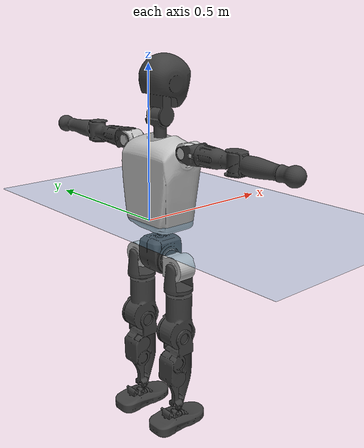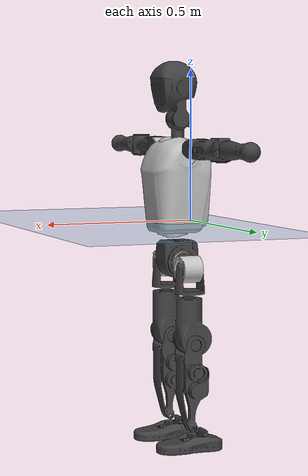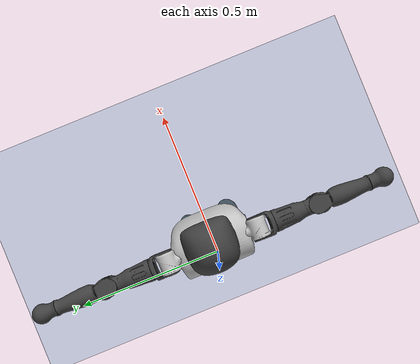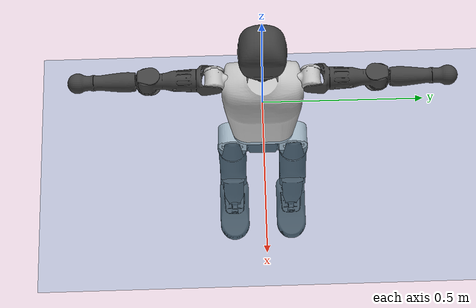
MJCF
<mujoco model="T1">
  <compiler angle="radian" assetdir="assets" balanceinertia="true" inertiafromgeom="false"/>

  <option timestep="0.005" density="1.2" viscosity="2e-05"/>

  <size nkey="1"/>

  <visual>
    <quality shadowsize="8192"/>
    <map shadowclip="0.5"/>
  </visual>

  <default>
    <default class="/">
      <joint armature="0.01" damping="0.01" frictionloss="0.1"/>
      <geom contype="0" conaffinity="0" group="1" solref="-1000 -80"/>
      <site size="0.01 0.005 0.005" group="5"/>
      <general forcelimited="true" biastype="affine" gainprm="25" biasprm="0 -25 -0.6"/>
      <default class="t1">
        <geom rgba="0.25 0.25 0.25 1"/>
        <default class="visual">
          <geom type="mesh" group="2"/>
        </default>
        <default class="collision">
          <geom group="3"/>
        </default>
        <default class="foot">
          <geom size="0.1115 0.05 0.015" type="box" condim="6" group="4" priority="1" solimp="0.015 1 0.015"/>
        </default>
        <default class="reward_collision_sphere">
          <geom group="5" rgba="1 0 0 1"/>
        </default>
      </default>
    </default>
  </default>

  <asset>
    <texture type="skybox" colorspace="auto" name="//unnamed_texture_0" builtin="gradient" rgb1="0.95 0.95 0.95" rgb2="0.95 0.95 0.95" width="100" height="600"/>
    <texture type="2d" colorspace="auto" name="texplane" builtin="checker" rgb1="0.345 0.575 0.748" rgb2="0.345 0.575 0.748" markrgb="1 1 1" width="512" height="512"/>
    <material name="MatPlane" class="/" texture="texplane" texuniform="true" texrepeat="2 2" specular="0.9"/>
    <mesh name="Trunk" class="/" file="Trunk.stl"/>
    <mesh name="H1" class="/" file="H1.stl"/>
    <mesh name="H2" class="/" file="H2.stl"/>
    <mesh name="AL1" class="/" file="AL1.stl"/>
    <mesh name="AL2" class="/" file="AL2.stl"/>
    <mesh name="AL3" class="/" file="AL3.stl"/>
    <mesh name="left_hand_link" class="/" file="left_hand_link.stl"/>
    <mesh name="AR1" class="/" file="AR1.stl"/>
    <mesh name="AR2" class="/" file="AR2.stl"/>
    <mesh name="AR3" class="/" file="AR3.stl"/>
    <mesh name="right_hand_link" class="/" file="right_hand_link.stl"/>
    <mesh name="Waist" class="/" file="Waist.stl"/>
    <mesh name="Hip_Pitch_Left" class="/" file="Hip_Pitch_Left.stl"/>
    <mesh name="Hip_Roll_Left" class="/" file="Hip_Roll_Left.stl"/>
    <mesh name="Hip_Yaw_Left" class="/" file="Hip_Yaw_Left.stl"/>
    <mesh name="Shank_Left" class="/" file="Shank_Left.stl"/>
    <mesh name="Ankle_Cross_Left" class="/" file="Ankle_Cross_Left.stl"/>
    <mesh name="left_foot_link" class="/" file="left_foot_link.stl"/>
    <mesh name="Hip_Pitch_Right" class="/" file="Hip_Pitch_Right.stl"/>
    <mesh name="Hip_Roll_Right" class="/" file="Hip_Roll_Right.stl"/>
    <mesh name="Hip_Yaw_Right" class="/" file="Hip_Yaw_Right.stl"/>
    <mesh name="Shank_Right" class="/" file="Shank_Right.stl"/>
    <mesh name="Ankle_Cross_Right" class="/" file="Ankle_Cross_Right.stl"/>
    <mesh name="right_foot_link" class="/" file="right_foot_link.stl"/>
  </asset>

  <worldbody>
    <geom name="floor" class="/" size="100 100 0.125" type="plane" group="0" material="MatPlane"/>
    <light name="toplight_shadow" class="/" pos="0 0 5" dir="0.0990148 0.0990148 -0.990148" type="directional" ambient="0.04 0.04 0.04" diffuse="0.55 0.55 0.55" specular="0.12 0.12 0.12"/>
    <light name="toplight_fill" class="/" pos="0 0 5" dir="0.0990148 0.0990148 -0.990148" type="directional" castshadow="false" ambient="0.04 0.04 0.04" diffuse="0.3 0.3 0.3" specular="0.08 0.08 0.08"/>
    <body name="trunk" childclass="t1" pos="-6.53304e-05 -0.000841578 -0.000586825" quat="1 -0.000321361 0.000100714 0.000331749">
      <inertial pos="0.0412995 -0.000563734 0.117568" quat="0.999958 -0.000201714 -0.00911377 -7.47968e-05" mass="9.41847" diaginertia="0.0226752 0.049872 0.0977397"/>
      <joint name="//unnamed_joint_0" type="free" armature="0" damping="0" frictionloss="0"/>
      <geom name="//unnamed_geom_1" class="visual" rgba="0.76 0.76 0.76 1" mesh="Trunk"/>
      <geom name="//unnamed_geom_2" class="collision" size="0.0698698 0.0931597 0.13974" pos="0.0453544 0 0.134199" type="box"/>
      <geom name="//unnamed_geom_3" class="reward_collision_sphere" size="0.107134" pos="0.0453544 0 0.111833"/>
      <geom name="//unnamed_geom_4" class="reward_collision_sphere" size="0.013974" pos="0.0453544 0.0782475 0"/>
      <geom name="//unnamed_geom_5" class="reward_collision_sphere" size="0.013974" pos="0.0453544 -0.0782475 0"/>
      <geom name="//unnamed_geom_6" class="reward_collision_sphere" size="0.013974" pos="0.0453544 0.0984998 0.201299"/>
      <geom name="//unnamed_geom_7" class="reward_collision_sphere" size="0.013974" pos="0.0453544 -0.0984998 0.201299"/>
      <site name="imu" pos="-0.00254817 -0.000498169 -0.000985717" size="0.00931597"/>
      <camera name="track" pos="0 -1.84112 0" quat="0.707107 0.707107 0 0" mode="trackcom"/>
      <camera name="ego_camera" pos="0.0922206 0 0.469697" quat="-0.5 -0.5 0.5 0.5"/>
      <body name="H1" pos="0.0460193 -0.000360878 0.271054" quat="1 -0.000173666 -0.000125557 -1.91627e-05">
        <inertial pos="-0.00147276 -0.00231598 0.0644324" quat="0.763426 -0.0142026 0.00221733 0.645735" mass="0.357293" diaginertia="5.9306e-05 0.000148809 0.000266359"/>
        <joint name="AAHead_yaw" pos="0 0 0" axis="-0.000541439 0.000508607 1" range="-1.59349 1.56874" armature="0.00928241" damping="0.0146509" frictionloss="0.0907168"/>
        <geom name="//unnamed_geom_8" class="visual" mesh="H1"/>
        <body name="H2" pos="-7.20534e-05 -4.92055e-06 0.0686231" quat="1 -0.000348876 0.000142855 -0.000197597">
          <inertial pos="0.00535934 0.00119121 0.110149" quat="0.988435 0.106206 -0.0746046 -0.0784256" mass="0.505941" diaginertia="0.000507854 0.00128363 0.00302299"/>
          <joint name="Head_pitch" pos="0 0 0" axis="-0.00266324 -0.999996 0.000241527" stiffness="0.000643389" range="-1.20994 0.362273" armature="0.00930207" damping="0.0103128" frictionloss="0.0967837"/>
          <geom name="//unnamed_geom_9" class="visual" mesh="H2"/>
          <geom name="//unnamed_geom_10" class="collision" size="0.0745278" pos="0.00755906 0 0.123016"/>
          <geom name="//unnamed_geom_11" class="reward_collision_sphere" size="0.0838438" pos="0.0151181 0 0.111833"/>
        </body>
      </body>
      <body name="AL1" pos="0.0452219 0.0978206 0.244391" quat="1 -0.000215141 0.000364977 0.000103829">
        <inertial pos="-0.00160446 0.0418754 0.000875934" quat="0.503999 0.498115 -0.50322 0.494607" mass="0.433119" diaginertia="0.000341575 0.000877371 0.000517572"/>
        <joint name="Left_Shoulder_Pitch" pos="0 0 0" axis="0.00108187 0.999998 0.00190137" range="-3.3139 1.22157" armature="0.00916161" damping="0.0030121" frictionloss="0.0960155"/>
        <geom name="//unnamed_geom_12" class="visual" rgba="0.76 0.76 0.76 1" mesh="AL1"/>
        <body name="AL2" pos="0.00119549 0.0440309 -0.000284038" quat="1 -1.13962e-05 -0.000103406 5.82343e-05">
          <inertial pos="0.00308831 0.035 -0.000381951" quat="0.48673 0.513879 -0.489213 0.509601" mass="0.128865" diaginertia="9.88752e-05 0.000231148 0.000310224"/>
          <joint name="Left_Shoulder_Roll" pos="0 0 0" axis="-0.999992 0.00313078 -0.00228087" stiffness="8.53519e-05" range="-1.56888 1.73314" armature="0.00956281" damping="0.00536336" frictionloss="0.0905471"/>
          <geom name="//unnamed_geom_13" class="visual" mesh="AL2"/>
          <body name="AL3" pos="4.89594e-05 0.0567892 -0.000257843" quat="1 0.000312455 2.90324e-05 5.25814e-06">
            <inertial pos="-0.00084086 0.0785624 -0.000176501" quat="0.706192 0.70802 -0.000498022 0.000232442" mass="0.82787" diaginertia="0.00314598 0.00847101 0.00109857"/>
            <joint name="Left_Elbow_Pitch" pos="0 0 0" axis="-0.000382324 -1 -0.000830281" range="-2.26373 2.26674" armature="0.00918499" damping="0.00797765" frictionloss="0.090095"/>
            <geom name="//unnamed_geom_14" class="visual" mesh="AL3"/>
            <geom name="//unnamed_geom_15" class="collision" size="0.0279479 0.0698698" pos="0 0.0460279 0" quat="0.707105 0.707108 0 0" type="cylinder"/>
            <geom name="//unnamed_geom_16" class="reward_collision_sphere" size="0.0335375"/>
            <body name="left_hand_link" pos="0.00125482 0.134977 0.00191623" quat="1 -0.000113593 -0.000153404 -0.000168365">
              <inertial pos="-4.00397e-05 0.100202 -0.00023044" quat="0.708433 0.705777 1.85879e-05 0.000948518" mass="0.269816" diaginertia="0.00201666 0.00538181 0.000380134"/>
              <joint name="Left_Elbow_Yaw" pos="0 0 0" axis="0.00330001 -0.00314385 0.99999" range="-2.4461 -0.00374252" armature="0.00950276" damping="0.0101134" frictionloss="0.0891085"/>
              <geom name="//unnamed_geom_17" class="visual" mesh="left_hand_link"/>
              <geom name="//unnamed_geom_18" class="collision" size="0.0279479 0.0815148" pos="0 0.119673 0" quat="0.707105 0.707108 0 0" type="cylinder"/>
              <geom name="//unnamed_geom_19" class="reward_collision_sphere" size="0.0465799"/>
              <geom name="//unnamed_geom_20" class="reward_collision_sphere" size="0.0326059" pos="0 0.101261 0"/>
              <geom name="//unnamed_geom_21" class="reward_collision_sphere" size="0.0326059" pos="0 0.19792 0"/>
            </body>
          </body>
        </body>
      </body>
      <body name="AR1" pos="0.0425537 -0.0965376 0.244717" quat="1 5.7981e-05 0.000467818 0.000171646">
        <inertial pos="-0.000385097 -0.0407757 0.000240828" quat="0.505285 0.497122 -0.505321 0.492146" mass="0.432029" diaginertia="0.000340124 0.000860962 0.0005135"/>
        <joint name="Right_Shoulder_Pitch" pos="0 0 0" axis="0.0003461 -1 -0.000302127" range="-1.22589 3.29264" armature="0.00902797" damping="0.00795554" frictionloss="0.0939524"/>
        <geom name="//unnamed_geom_22" class="visual" rgba="0.76 0.76 0.76 1" mesh="AR1"/>
        <body name="AR2" pos="-0.000812014 -0.0432446 -0.000953698" quat="1 0.00012712 -0.000203493 -0.000201975">
          <inertial pos="0.00350782 -0.0348894 -0.000297105" quat="0.511296 0.488708 -0.511358 0.488113" mass="0.129235" diaginertia="0.000100089 0.000226938 0.000308536"/>
          <joint name="Right_Shoulder_Roll" pos="0 0 0" axis="-0.999979 0.00176254 0.00618188" range="-1.73737 1.57556" armature="0.00929968" damping="0.00199704" frictionloss="0.0933892"/>
          <geom name="//unnamed_geom_23" class="visual" mesh="AR2"/>
          <body name="AR3" pos="-0.000181476 -0.0560407 0.000173606" quat="1 -2.11135e-05 -4.53798e-05 1.50249e-05">
            <inertial pos="-0.00122304 -0.0787852 0.000391644" quat="0.709212 0.70499 -0.00276993 0.000255378" mass="0.836546" diaginertia="0.00322935 0.00854956 0.00108795"/>
            <joint name="Right_Elbow_Pitch" pos="0 0 0" axis="0.00366323 0.999988 -0.0032056" range="-2.27327 2.28786" armature="0.00952488" damping="0.00812098" frictionloss="0.092631"/>
            <geom name="//unnamed_geom_24" class="visual" mesh="AR3"/>
            <geom name="//unnamed_geom_25" class="collision" size="0.0279479 0.0698698" pos="0 -0.0460279 0" quat="0.707105 0.707108 0 0" type="cylinder"/>
            <geom name="//unnamed_geom_26" class="reward_collision_sphere" size="0.0335375"/>
            <body name="right_hand_link" pos="-0.000449056 -0.135184 0.000218747" quat="1 3.45065e-05 -1.02277e-06 -1.06324e-05">
              <inertial pos="0.000468297 -0.101317 0.000863048" quat="0.706368 0.707845 0.000140788 4.07946e-05" mass="0.267225" diaginertia="0.00202399 0.00546952 0.000375984"/>
              <joint name="Right_Elbow_Yaw" pos="0 0 0" axis="-0.000342945 -0.000536753 1" stiffness="0.00323128" range="-2.26405e-06 2.4396" armature="0.00931999" damping="0.00909807" frictionloss="0.0921574"/>
              <geom name="//unnamed_geom_27" class="visual" mesh="right_hand_link"/>
              <geom name="//unnamed_geom_28" class="collision" size="0.0279479 0.0815148" pos="0 -0.119673 0" quat="0.707105 0.707108 0 0" type="cylinder"/>
              <geom name="//unnamed_geom_29" class="reward_collision_sphere" size="0.0465799"/>
              <geom name="//unnamed_geom_30" class="reward_collision_sphere" size="0.0326059" pos="0 -0.101261 0"/>
              <geom name="//unnamed_geom_31" class="reward_collision_sphere" size="0.0326059" pos="0 -0.19792 0"/>
            </body>
          </body>
        </body>
      </body>
      <body name="Waist" pos="0.0470678 -0.000738598 -0.129905" quat="1 3.75858e-05 -3.99699e-05 2.03407e-05">
        <inertial pos="0.000510383 -0.000822578 0.00753348" quat="0.983545 0.000234634 -0.180644 0.00277637" mass="2.10147" diaginertia="0.00134717 0.00353919 0.00843854"/>
        <joint name="Waist" pos="0 0 0" axis="0.000529047 -0.000214236 1" stiffness="0.00174612" range="-1.55756 1.55293" armature="0.00937745" damping="0" frictionloss="0.0936522"/>
        <geom name="//unnamed_geom_32" class="visual" mesh="Waist"/>
        <body name="Hip_Pitch_Left" pos="0.000925978 0.0982793 -0.000312552" quat="1 -0.000365067 8.49683e-05 -0.000205325">
          <inertial pos="0.00145119 -0.00696735 -0.0213589" quat="0.97486 0.222375 0.0138885 0.00190021" mass="0.830093" diaginertia="0.000441175 0.000962187 0.00220826"/>
          <joint name="Left_Hip_Pitch" pos="0 0 0" axis="-0.00562392 0.999982 0.002166" range="-1.80587 1.57019" armature="0.00932384" damping="0.0110293" frictionloss="0.0937585"/>
          <geom name="//unnamed_geom_33" class="visual" rgba="0.76 0.76 0.76 1" mesh="Hip_Pitch_Left"/>
          <body name="Hip_Roll_Left" pos="-0.000953137 0.000786779 -0.0236206" quat="1 6.36124e-05 7.55538e-05 5.85075e-05">
            <inertial pos="0.00159624 -0.000542251 -0.0601944" quat="0.704856 -0.00396464 -0.00637241 0.709311" mass="0.30899" diaginertia="0.000424125 0.000983704 0.000891405"/>
            <joint name="Left_Hip_Roll" pos="0 0 0" axis="-0.999997 0.00143693 0.00179237" range="-1.58244 0.203139" armature="0.009281" damping="0.00590954" frictionloss="0.0963267"/>
            <geom name="//unnamed_geom_34" class="visual" mesh="Hip_Roll_Left"/>
            <geom name="//unnamed_geom_35" class="reward_collision_sphere" size="0.0512379"/>
            <body name="Hip_Yaw_Left" pos="0.000981283 0.000450375 -0.0914909" quat="1 3.70858e-05 -3.0585e-05 -1.32497e-05">
              <inertial pos="-0.00470753 -0.00067417 -0.100298" quat="0.697233 -0.0352643 -0.0313716 0.715289" mass="1.76872" diaginertia="0.00644807 0.016714 0.00454733"/>
              <joint name="Left_Hip_Yaw" pos="0 0 0" axis="0.00168522 -0.00389417 -0.999991" range="-1.00876 0.995066" armature="0.00956997" damping="0.0128116" frictionloss="0.0925788"/>
              <geom name="//unnamed_geom_36" class="visual" mesh="Hip_Yaw_Left"/>
              <geom name="//unnamed_geom_37" class="collision" size="0.0465799 0.0745278" type="cylinder"/>
              <body name="Shank_Left" pos="-0.00953453 0.000427791 -0.150756" quat="1 4.26271e-05 0.000406784 8.26586e-05">
                <inertial pos="-0.00551223 -0.000614469 -0.138619" quat="0.997518 0.00144669 -0.023992 0.0661891" mass="1.38253" diaginertia="0.00844027 0.0226395 0.00320342"/>
                <joint name="Left_Knee_Pitch" pos="0 0 0" axis="0.000241577 0.999998 -0.00217632" range="-0.00625593 2.34139" armature="0.0090076" damping="0.00783858" frictionloss="0.0917199"/>
                <geom name="//unnamed_geom_38" class="visual" mesh="Shank_Left"/>
                <geom name="//unnamed_geom_39" class="collision" size="0.0465799 0.0698698" pos="0 0 -0.134199" type="cylinder"/>
                <geom name="//unnamed_geom_40" class="reward_collision_sphere" size="0.0605538"/>
                <body name="Ankle_Cross_Left" pos="-0.000940533 0.000274903 -0.313474" quat="1 2.9245e-05 0.000149074 5.24789e-07">
                  <inertial pos="-0.00253316 0.000199991 -0.00924044" quat="0.445833 0.551626 0.550171 0.440741" mass="0.0588339" diaginertia="7.13834e-06 1.68992e-05 1.98165e-05"/>
                  <joint name="Left_Ankle_Pitch" pos="0 0 0" axis="0.00110687 0.99999 0.00440619" stiffness="6.57107e-05" range="-0.865323 0.347725" armature="0.00943029" damping="0.00626787" frictionloss="0.0926096"/>
                  <geom name="//unnamed_geom_41" class="visual" mesh="Ankle_Cross_Left"/>
                  <body name="left_foot_link" pos="-0.00107434 -0.000269027 -0.0138139" quat="1 -0.00039919 0.00022761 7.46306e-05">
                    <inertial pos="-0.000130602 0.000307506 -0.0090874" quat="-0.000171019 0.620495 -3.69452e-05 0.78421" mass="0.561974" diaginertia="0.0006737 0.00158714 0.00388486"/>
                    <joint name="Left_Ankle_Roll" pos="0 0 0" axis="-0.999996 0.0026244 0.000811761" range="-0.427182 0.424808" armature="0.00932715" damping="0.0131359" frictionloss="0.0934641"/>
                    <geom name="//unnamed_geom_42" class="visual" mesh="left_foot_link"/>
                    <geom name="left_foot" class="foot" size="0.104958 0.0501321 0.0138338" pos="0.00755906 0 -0.0167749"/>
                    <geom name="//unnamed_geom_44" class="reward_collision_sphere" size="0.0484431" pos="0.00755906 0 -0.0167749"/>
                    <geom name="//unnamed_geom_45" class="reward_collision_sphere" size="0.0279479" pos="0.0718111 -0.0211729 -0.0167749"/>
                    <geom name="//unnamed_geom_46" class="reward_collision_sphere" size="0.0279479" pos="-0.0529135 -0.0211729 -0.0167749"/>
                    <site name="left_foot" class="foot" pos="0.00755906 0 -0.0167749" size="0.00931597"/>
                  </body>
                </body>
              </body>
            </body>
          </body>
        </body>
        <body name="Hip_Pitch_Right" pos="-0.00029038 -0.096506 3.41168e-05" quat="1 3.08686e-05 5.86568e-05 -2.50116e-05">
          <inertial pos="0.000167148 0.00607845 -0.0197521" quat="0.973523 -0.227972 0.0150285 -0.00744244" mass="0.827695" diaginertia="0.000448173 0.000968254 0.00216613"/>
          <joint name="Right_Hip_Pitch" pos="0 0 0" axis="0.000433996 -0.999999 -0.00131802" range="-1.58896 1.7978" armature="0.00923792" damping="0.00295722" frictionloss="0.0966376"/>
          <geom name="//unnamed_geom_47" class="visual" rgba="0.76 0.76 0.76 1" mesh="Hip_Pitch_Right"/>
          <body name="Hip_Roll_Right" pos="-0.000782559 -2.08924e-06 -0.0226052" quat="1 -7.40235e-06 -4.10451e-05 1.3357e-05">
            <inertial pos="0.00109977 -0.00030899 -0.0608975" quat="0.707039 -0.00590821 -0.00598304 0.707124" mass="0.311559" diaginertia="0.000423818 0.000998244 0.000898535"/>
            <joint name="Right_Hip_Roll" pos="0 0 0" axis="-0.999999 0.001256 -0.000440427" range="-0.218066 1.58057" armature="0.00933502" damping="0.011517" frictionloss="0.0920046"/>
            <geom name="//unnamed_geom_48" class="visual" mesh="Hip_Roll_Right"/>
            <geom name="//unnamed_geom_49" class="reward_collision_sphere" size="0.0512379"/>
            <body name="Hip_Yaw_Right" pos="5.41707e-05 -0.000161725 -0.0918803" quat="1 -5.4969e-06 3.176e-06 5.27027e-06">
              <inertial pos="-0.00492796 0.000642553 -0.0994152" quat="0.714268 -0.0328571 -0.0334506 0.6983" mass="1.74029" diaginertia="0.00629332 0.016498 0.00450911"/>
              <joint name="Right_Hip_Yaw" pos="0 0 0" axis="-0.000262095 -0.000235144 -1" range="-0.995787 1.00357" armature="0.00929586" damping="0.00696442" frictionloss="0.0928782"/>
              <geom name="//unnamed_geom_50" class="visual" mesh="Hip_Yaw_Right"/>
              <geom name="//unnamed_geom_51" class="collision" size="0.0465799 0.0745278" type="cylinder"/>
              <body name="Shank_Right" pos="-0.0104651 -0.000318993 -0.149338" quat="1 2.65724e-05 3.2455e-05 -8.27867e-06">
                <inertial pos="-0.00607042 -0.000483672 -0.136404" quat="0.999385 -0.000642573 -0.0229547 -0.0265021" mass="1.41999" diaginertia="0.00855114 0.0227298 0.00339424"/>
                <joint name="Right_Knee_Pitch" pos="0 0 0" axis="0.00777147 -0.99997 -0.000357396" range="-2.3394 -0.00849626" armature="0.00942146" damping="0.00672924" frictionloss="0.0965957"/>
                <geom name="//unnamed_geom_52" class="visual" mesh="Shank_Right"/>
                <geom name="//unnamed_geom_53" class="collision" size="0.0465799 0.0698698" pos="0 0 -0.134199" type="cylinder"/>
                <geom name="//unnamed_geom_54" class="reward_collision_sphere" size="0.0605538"/>
                <body name="Ankle_Cross_Right" pos="0.00136 0.000464431 -0.313222" quat="1 6.74519e-05 0.000207624 4.88052e-05">
                  <inertial pos="-0.00234997 0.00114391 -0.00879764" quat="0.441166 0.551018 0.554451 0.440835" mass="0.0596144" diaginertia="7.16554e-06 1.68612e-05 1.98388e-05"/>
                  <joint name="Right_Ankle_Pitch" pos="0 0 0" axis="-0.000162047 -1 7.3929e-05" range="-0.325667 0.85091" armature="0.0090422" damping="0.00663043" frictionloss="0.0931296"/>
                  <geom name="//unnamed_geom_55" class="visual" mesh="Ankle_Cross_Right"/>
                  <body name="right_foot_link" pos="0.000306967 -0.00116181 -0.0139023" quat="1 7.72398e-06 -5.04569e-05 8.99553e-05">
                    <inertial pos="-0.000145053 0.000494218 -0.00928134" quat="0.00107319 0.619465 0.00126837 0.785022" mass="0.549678" diaginertia="0.000663487 0.00159149 0.00381707"/>
                    <joint name="Right_Ankle_Roll" pos="0 0 0" axis="-0.999999 0.00100572 0.000445445" range="-0.442758 0.433451" armature="0.00957106" damping="0.0120496" frictionloss="0.0988359"/>
                    <geom name="//unnamed_geom_56" class="visual" mesh="right_foot_link"/>
                    <geom name="right_foot" class="foot" size="0.101483 0.0433988 0.0147624" pos="0.00755906 0 -0.0167749"/>
                    <geom name="//unnamed_geom_58" class="reward_collision_sphere" size="0.0372639"/>
                    <geom name="//unnamed_geom_59" class="reward_collision_sphere" size="0.0279479" pos="0.00755906 0 -0.0167749"/>
                    <geom name="//unnamed_geom_60" class="reward_collision_sphere" size="0.0279479" pos="0.0718111 0.0211729 -0.0167749"/>
                    <geom name="//unnamed_geom_61" class="reward_collision_sphere" size="0.0279479" pos="-0.0529135 0.0211729 -0.0167749"/>
                    <site name="right_foot" class="foot" pos="0.00755906 0 -0.0167749" size="0.00931597"/>
                  </body>
                </body>
              </body>
            </body>
          </body>
        </body>
      </body>
    </body>
  </worldbody>

  <contact>
    <pair class="/" geom1="floor" geom2="left_foot" name="//unnamed_contact_0"/>
    <pair class="/" geom1="floor" geom2="right_foot" name="//unnamed_contact_1"/>
  </contact>

  <actuator>
    <general name="AAHead_yaw" class="/" joint="AAHead_yaw" forcerange="-6.49445 6.49445" gainprm="22.9115" biasprm="0 -22.9115 -0.551239"/>
    <general name="Head_pitch" class="/" joint="Head_pitch" forcerange="-6.32931 6.32931" gainprm="22.9115" biasprm="0 -22.9115 -0.551239"/>
    <general name="Left_Shoulder_Pitch" class="/" joint="Left_Shoulder_Pitch" forcerange="-17.1293 17.1293" gainprm="22.9115" biasprm="0 -22.9115 -0.551239"/>
    <general name="Left_Shoulder_Roll" class="/" joint="Left_Shoulder_Roll" forcerange="-16.8327 16.8327" gainprm="22.9115" biasprm="0 -22.9115 -0.551239"/>
    <general name="Left_Elbow_Pitch" class="/" joint="Left_Elbow_Pitch" forcerange="-16.8543 16.8543" gainprm="22.9115" biasprm="0 -22.9115 -0.551239"/>
    <general name="Left_Elbow_Yaw" class="/" joint="Left_Elbow_Yaw" forcerange="-16.8625 16.8625" gainprm="22.9115" biasprm="0 -22.9115 -0.551239"/>
    <general name="Right_Shoulder_Pitch" class="/" joint="Right_Shoulder_Pitch" forcerange="-17.1687 17.1687" gainprm="22.9115" biasprm="0 -22.9115 -0.551239"/>
    <general name="Right_Shoulder_Roll" class="/" joint="Right_Shoulder_Roll" forcerange="-16.2159 16.2159" gainprm="22.9115" biasprm="0 -22.9115 -0.551239"/>
    <general name="Right_Elbow_Pitch" class="/" joint="Right_Elbow_Pitch" forcerange="-16.751 16.751" gainprm="22.9115" biasprm="0 -22.9115 -0.551239"/>
    <general name="Right_Elbow_Yaw" class="/" joint="Right_Elbow_Yaw" forcerange="-16.4958 16.4958" gainprm="22.9115" biasprm="0 -22.9115 -0.551239"/>
    <general name="Waist" class="/" joint="Waist" forcerange="-28.1548 28.1548" gainprm="22.9115" biasprm="0 -22.9115 -0.551239"/>
    <general name="Left_Hip_Pitch" class="/" joint="Left_Hip_Pitch" forcerange="-41.565 41.565" gainprm="22.9115" biasprm="0 -22.9115 -0.551239"/>
    <general name="Left_Hip_Roll" class="/" joint="Left_Hip_Roll" forcerange="-28.733 28.733" gainprm="22.9115" biasprm="0 -22.9115 -0.551239"/>
    <general name="Left_Hip_Yaw" class="/" joint="Left_Hip_Yaw" forcerange="-28.8812 28.8812" gainprm="22.9115" biasprm="0 -22.9115 -0.551239"/>
    <general name="Left_Knee_Pitch" class="/" joint="Left_Knee_Pitch" forcerange="-56.6423 56.6423" gainprm="22.9115" biasprm="0 -22.9115 -0.551239"/>
    <general name="Left_Ankle_Pitch" class="/" joint="Left_Ankle_Pitch" forcerange="-19.2617 19.2617" gainprm="22.9115" biasprm="0 -22.9115 -0.551239"/>
    <general name="Left_Ankle_Roll" class="/" joint="Left_Ankle_Roll" forcerange="-14.4571 14.4571" gainprm="22.9115" biasprm="0 -22.9115 -0.551239"/>
    <general name="Right_Hip_Pitch" class="/" joint="Right_Hip_Pitch" forcerange="-41.8066 41.8066" gainprm="22.9115" biasprm="0 -22.9115 -0.551239"/>
    <general name="Right_Hip_Roll" class="/" joint="Right_Hip_Roll" forcerange="-27.6516 27.6516" gainprm="22.9115" biasprm="0 -22.9115 -0.551239"/>
    <general name="Right_Hip_Yaw" class="/" joint="Right_Hip_Yaw" forcerange="-27.0996 27.0996" gainprm="22.9115" biasprm="0 -22.9115 -0.551239"/>
    <general name="Right_Knee_Pitch" class="/" joint="Right_Knee_Pitch" forcerange="-56.3104 56.3104" gainprm="22.9115" biasprm="0 -22.9115 -0.551239"/>
    <general name="Right_Ankle_Pitch" class="/" joint="Right_Ankle_Pitch" forcerange="-18.5604 18.5604" gainprm="22.9115" biasprm="0 -22.9115 -0.551239"/>
    <general name="Right_Ankle_Roll" class="/" joint="Right_Ankle_Roll" forcerange="-14.096 14.096" gainprm="22.9115" biasprm="0 -22.9115 -0.551239"/>
  </actuator>

  <sensor>
    <gyro site="imu" name="imu_angular_velocity"/>
    <velocimeter site="imu" name="imu_linear_velocity"/>
    <framelinvel objtype="site" objname="left_foot" name="left_foot_global_linear_velocity"/>
    <framelinvel objtype="site" objname="right_foot" name="right_foot_global_linear_velocity"/>
  </sensor>

  <keyframe>
    <key name="home" qpos="0 0 0.6385 1 0 0 0 0 0 0 1.4 0 -0.4 0 -1.4 0 0.4 0 -0.4 0 0 0.8 -0.4 0 0.4 0 0 -0.8 0.4 0"/>
  </keyframe>
</mujoco>
